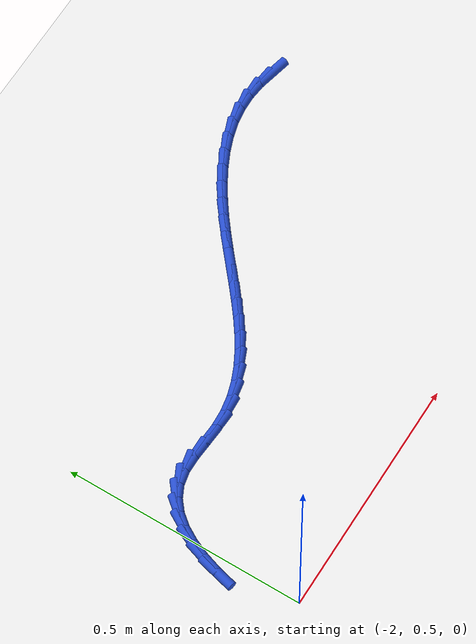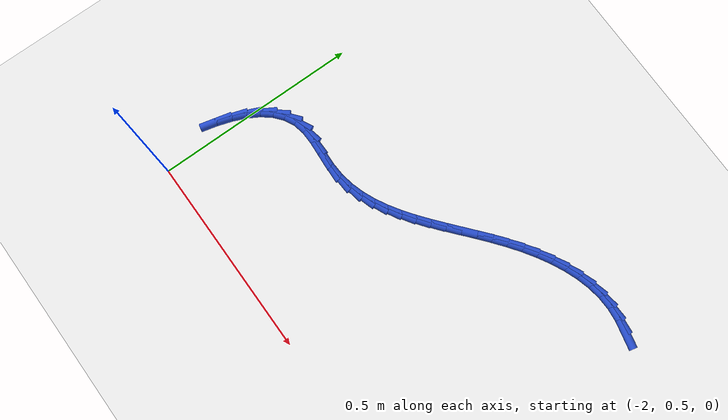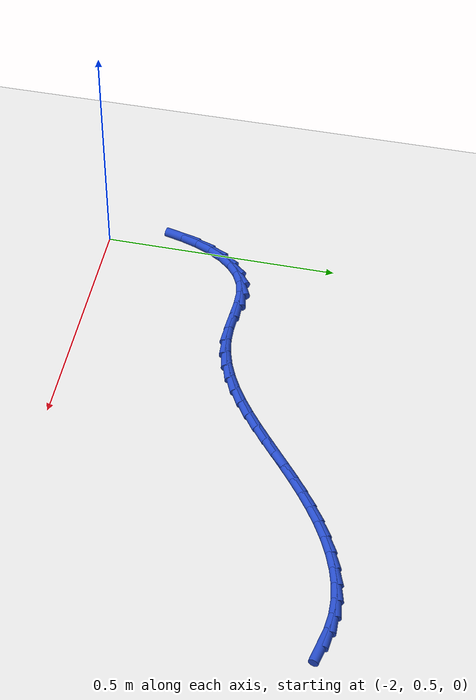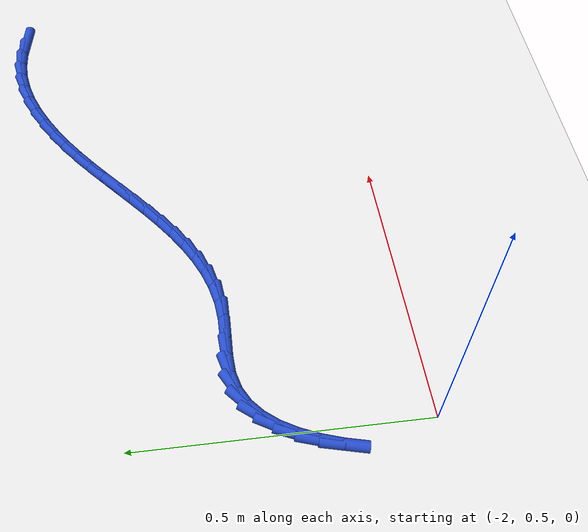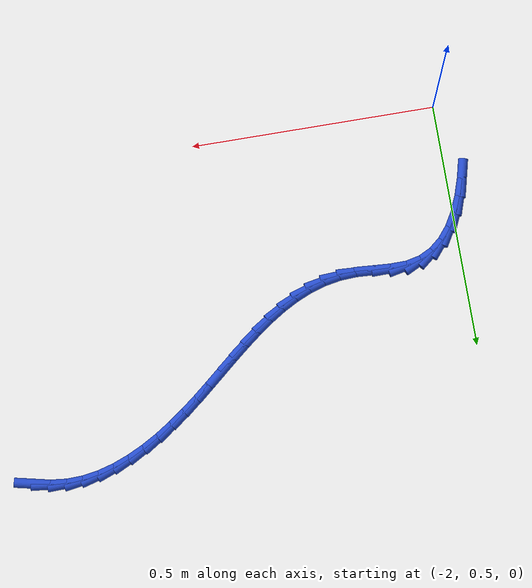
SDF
<sdf version="1.6">
 <world name="default">
  <model name="ground_plane">
   <static>1</static>
   <link name="link">
    <collision name="collision">
     <geometry><plane><normal>0 0 1</normal><size>100 100</size></plane></geometry>
     <surface><friction><ode><mu>100</mu><mu2>50</mu2></ode></friction></surface>
    </collision>
    <visual name="visual">
     <cast_shadows>0</cast_shadows>
     <geometry><plane><normal>0 0 1</normal><size>100 100</size></plane></geometry>
     <material>
      <script><uri>file://media/materials/scripts/gazebo.material</uri><name>Gazebo/WhiteGlow</name></script>
     </material>
    </visual>
   </link>
  </model>
  <model name="line">
   <link name="link_48">
    <pose>-1.0744508417976113 1.1304381525775553 0.01 0 1.57 -0.22320368448068828</pose>
    <collision name="collision">
     <geometry><cylinder><radius>0.01</radius><length>0.08</length></cylinder></geometry>
    </collision>
    <visual name="visual">
     <material>
      <script><name>Gazebo/Blue</name><uri>file://media/materials/scripts/gazebo.material</uri></script>
     </material>
     <geometry><cylinder><radius>0.01</radius><length>0.08</length></cylinder></geometry>
    </visual>
   </link>
   <link name="link_49">
    <pose>-1.1069730959214021 1.1378202402189652 0.01 0 1.57 -0.1045193089795949</pose>
    <collision name="collision">
     <geometry><cylinder><radius>0.01</radius><length>0.08</length></cylinder></geometry>
    </collision>
    <visual name="visual">
     <material>
      <script><name>Gazebo/Blue</name><uri>file://media/materials/scripts/gazebo.material</uri></script>
     </material>
     <geometry><cylinder><radius>0.01</radius><length>0.08</length></cylinder></geometry>
    </visual>
   </link>
   <link name="link_50">
    <pose>-1.1397639729906248 1.1412600550030723 0.01 0 1.57 0.026673547883761722</pose>
    <collision name="collision">
     <geometry><cylinder><radius>0.01</radius><length>0.08</length></cylinder></geometry>
    </collision>
    <visual name="visual">
     <material>
      <script><name>Gazebo/Blue</name><uri>file://media/materials/scripts/gazebo.material</uri></script>
     </material>
     <geometry><cylinder><radius>0.01</radius><length>0.08</length></cylinder></geometry>
    </visual>
   </link>
   <link name="link_51">
    <pose>-1.1727604223580879 1.1403797138398022 0.01 0 1.57 0.1551874849162327</pose>
    <collision name="collision">
     <geometry><cylinder><radius>0.01</radius><length>0.08</length></cylinder></geometry>
    </collision>
    <visual name="visual">
     <material>
      <script><name>Gazebo/Blue</name><uri>file://media/materials/scripts/gazebo.material</uri></script>
     </material>
     <geometry><cylinder><radius>0.01</radius><length>0.08</length></cylinder></geometry>
    </visual>
   </link>
   <link name="link_52">
    <pose>-1.20584529373193 1.1352037377175122 0.01 0 1.57 0.267403179976876</pose>
    <collision name="collision">
     <geometry><cylinder><radius>0.01</radius><length>0.08</length></cylinder></geometry>
    </collision>
    <visual name="visual">
     <material>
      <script><name>Gazebo/Blue</name><uri>file://media/materials/scripts/gazebo.material</uri></script>
     </material>
     <geometry><cylinder><radius>0.01</radius><length>0.08</length></cylinder></geometry>
    </visual>
   </link>
   <link name="link_53">
    <pose>-1.2388468764806124 1.1261624784454707 0.01 0 1.57 0.3635602836979531</pose>
    <collision name="collision">
     <geometry><cylinder><radius>0.01</radius><length>0.08</length></cylinder></geometry>
    </collision>
    <visual name="visual">
     <material>
      <script><name>Gazebo/Blue</name><uri>file://media/materials/scripts/gazebo.material</uri></script>
     </material>
     <geometry><cylinder><radius>0.01</radius><length>0.08</length></cylinder></geometry>
    </visual>
   </link>
   <link name="link_54">
    <pose>-1.2715910514159616 1.1137042031634286 0.01 0 1.57 0.4454290458438311</pose>
    <collision name="collision">
     <geometry><cylinder><radius>0.01</radius><length>0.08</length></cylinder></geometry>
    </collision>
    <visual name="visual">
     <material>
      <script><name>Gazebo/Blue</name><uri>file://media/materials/scripts/gazebo.material</uri></script>
     </material>
     <geometry><cylinder><radius>0.01</radius><length>0.08</length></cylinder></geometry>
    </visual>
   </link>
   <link name="link_55">
    <pose>-1.3039036993498028 1.0982771790111363 0.01 0 1.57 0.5150763140110858</pose>
    <collision name="collision">
     <geometry><cylinder><radius>0.01</radius><length>0.08</length></cylinder></geometry>
    </collision>
    <visual name="visual">
     <material>
      <script><name>Gazebo/Blue</name><uri>file://media/materials/scripts/gazebo.material</uri></script>
     </material>
     <geometry><cylinder><radius>0.01</radius><length>0.08</length></cylinder></geometry>
    </visual>
   </link>
   <link name="link_56">
    <pose>-1.3356107010939628 1.0803296731283443 0.01 0 1.57 0.5744866688696507</pose>
    <collision name="collision">
     <geometry><cylinder><radius>0.01</radius><length>0.08</length></cylinder></geometry>
    </collision>
    <visual name="visual">
     <material>
      <script><name>Gazebo/Blue</name><uri>file://media/materials/scripts/gazebo.material</uri></script>
     </material>
     <geometry><cylinder><radius>0.01</radius><length>0.08</length></cylinder></geometry>
    </visual>
   </link>
   <link name="link_57">
    <pose>-1.3665379374602666 1.0603099526548025 0.01 0 1.57 0.6245268697723203</pose>
    <collision name="collision">
     <geometry><cylinder><radius>0.01</radius><length>0.08</length></cylinder></geometry>
    </collision>
    <visual name="visual">
     <material>
      <script><name>Gazebo/Blue</name><uri>file://media/materials/scripts/gazebo.material</uri></script>
     </material>
     <geometry><cylinder><radius>0.01</radius><length>0.08</length></cylinder></geometry>
    </visual>
   </link>
   <link name="link_58">
    <pose>-1.3965663846158385 1.0386664907402936 0.01 0 1.57 0.6624686107490294</pose>
    <collision name="collision">
     <geometry><cylinder><radius>0.01</radius><length>0.08</length></cylinder></geometry>
    </collision>
    <visual name="visual">
     <material>
      <script><name>Gazebo/Blue</name><uri>file://media/materials/scripts/gazebo.material</uri></script>
     </material>
     <geometry><cylinder><radius>0.01</radius><length>0.08</length></cylinder></geometry>
    </visual>
   </link>
   <link name="link_59">
    <pose>-1.4258174617749397 1.0158486595882337 0.01 0 1.57 0.6876684319064283</pose>
    <collision name="collision">
     <geometry><cylinder><radius>0.01</radius><length>0.08</length></cylinder></geometry>
    </collision>
    <visual name="visual">
     <material>
      <script><name>Gazebo/Blue</name><uri>file://media/materials/scripts/gazebo.material</uri></script>
     </material>
     <geometry><cylinder><radius>0.01</radius><length>0.08</length></cylinder></geometry>
    </visual>
   </link>
   <link name="link_60">
    <pose>-1.4544781626176728 0.9923060765950814 0.01 0 1.57 0.700349872848453</pose>
    <collision name="collision">
     <geometry><cylinder><radius>0.01</radius><length>0.08</length></cylinder></geometry>
    </collision>
    <visual name="visual">
     <material>
      <script><name>Gazebo/Blue</name><uri>file://media/materials/scripts/gazebo.material</uri></script>
     </material>
     <geometry><cylinder><radius>0.01</radius><length>0.08</length></cylinder></geometry>
    </visual>
   </link>
   <link name="link_61">
    <pose>-1.4827354822961087 0.9684883591628003 0.01 0 1.57 0.7005146841830622</pose>
    <collision name="collision">
     <geometry><cylinder><radius>0.01</radius><length>0.08</length></cylinder></geometry>
    </collision>
    <visual name="visual">
     <material>
      <script><name>Gazebo/Blue</name><uri>file://media/materials/scripts/gazebo.material</uri></script>
     </material>
     <geometry><cylinder><radius>0.01</radius><length>0.08</length></cylinder></geometry>
    </visual>
   </link>
   <link name="link_62">
    <pose>-1.5107764159623172 0.9448451246933528 0.01 0 1.57 0.6878769783258032</pose>
    <collision name="collision">
     <geometry><cylinder><radius>0.01</radius><length>0.08</length></cylinder></geometry>
    </collision>
    <visual name="visual">
     <material>
      <script><name>Gazebo/Blue</name><uri>file://media/materials/scripts/gazebo.material</uri></script>
     </material>
     <geometry><cylinder><radius>0.01</radius><length>0.08</length></cylinder></geometry>
    </visual>
   </link>
   <link name="link_63">
    <pose>-1.5387879587683688 0.9218259905887011 0.01 0 1.57 0.6618407252106738</pose>
    <collision name="collision">
     <geometry><cylinder><radius>0.01</radius><length>0.08</length></cylinder></geometry>
    </collision>
    <visual name="visual">
     <material>
      <script><name>Gazebo/Blue</name><uri>file://media/materials/scripts/gazebo.material</uri></script>
     </material>
     <geometry><cylinder><radius>0.01</radius><length>0.08</length></cylinder></geometry>
    </visual>
   </link>
   <link name="link_64">
    <pose>-1.5669571058663347 0.8998805742508086 0.01 0 1.57 0.6215283284862906</pose>
    <collision name="collision">
     <geometry><cylinder><radius>0.01</radius><length>0.08</length></cylinder></geometry>
    </collision>
    <visual name="visual">
     <material>
      <script><name>Gazebo/Blue</name><uri>file://media/materials/scripts/gazebo.material</uri></script>
     </material>
     <geometry><cylinder><radius>0.01</radius><length>0.08</length></cylinder></geometry>
    </visual>
   </link>
   <link name="link_65">
    <pose>-1.595470852408284 0.8794584930816369 0.01 0 1.57 0.5658889646146867</pose>
    <collision name="collision">
     <geometry><cylinder><radius>0.01</radius><length>0.08</length></cylinder></geometry>
    </collision>
    <visual name="visual">
     <material>
      <script><name>Gazebo/Blue</name><uri>file://media/materials/scripts/gazebo.material</uri></script>
     </material>
     <geometry><cylinder><radius>0.01</radius><length>0.08</length></cylinder></geometry>
    </visual>
   </link>
   <link name="link_66">
    <pose>-1.6245161935462884 0.86100936448315 0.01 0 1.57 0.4939368528102909</pose>
    <collision name="collision">
     <geometry><cylinder><radius>0.01</radius><length>0.08</length></cylinder></geometry>
    </collision>
    <visual name="visual">
     <material>
      <script><name>Gazebo/Blue</name><uri>file://media/materials/scripts/gazebo.material</uri></script>
     </material>
     <geometry><cylinder><radius>0.01</radius><length>0.08</length></cylinder></geometry>
    </visual>
   </link>
   <link name="link_67">
    <pose>-1.6542801244324172 0.8449828058573094 0.01 0 1.57 0.40517528609182224</pose>
    <collision name="collision">
     <geometry><cylinder><radius>0.01</radius><length>0.08</length></cylinder></geometry>
    </collision>
    <visual name="visual">
     <material>
      <script><name>Gazebo/Blue</name><uri>file://media/materials/scripts/gazebo.material</uri></script>
     </material>
     <geometry><cylinder><radius>0.01</radius><length>0.08</length></cylinder></geometry>
    </visual>
   </link>
   <link name="link_68">
    <pose>-1.6849496402187423 0.8318284346060787 0.01 0 1.57 0.3002125887627156</pose>
    <collision name="collision">
     <geometry><cylinder><radius>0.01</radius><length>0.08</length></cylinder></geometry>
    </collision>
    <visual name="visual">
     <material>
      <script><name>Gazebo/Blue</name><uri>file://media/materials/scripts/gazebo.material</uri></script>
     </material>
     <geometry><cylinder><radius>0.01</radius><length>0.08</length></cylinder></geometry>
    </visual>
   </link>
   <link name="link_69">
    <pose>-1.7167117360573327 0.8219958681314198 0.01 0 1.57 0.1814223896076841</pose>
    <collision name="collision">
     <geometry><cylinder><radius>0.01</radius><length>0.08</length></cylinder></geometry>
    </collision>
    <visual name="visual">
     <material>
      <script><name>Gazebo/Blue</name><uri>file://media/materials/scripts/gazebo.material</uri></script>
     </material>
     <geometry><cylinder><radius>0.01</radius><length>0.08</length></cylinder></geometry>
    </visual>
   </link>
   <link name="link_70">
    <pose>-1.7497534071002598 0.8159347238352956 0.01 0 1.57 0.05335401466200969</pose>
    <collision name="collision">
     <geometry><cylinder><radius>0.01</radius><length>0.08</length></cylinder></geometry>
    </collision>
    <visual name="visual">
     <material>
      <script><name>Gazebo/Blue</name><uri>file://media/materials/scripts/gazebo.material</uri></script>
     </material>
     <geometry><cylinder><radius>0.01</radius><length>0.08</length></cylinder></geometry>
    </visual>
   </link>
   <link name="link_71">
    <pose>-1.7842603697161108 0.8140918898790398 0.01 0 1.57 -0.05081191363110439</pose>
    <collision name="collision">
     <geometry><cylinder><radius>0.01</radius><length>0.08</length></cylinder></geometry>
    </collision>
    <visual name="visual">
     <material>
      <script><name>Gazebo/Blue</name><uri>file://media/materials/scripts/gazebo.material</uri></script>
     </material>
     <geometry><cylinder><radius>0.01</radius><length>0.08</length></cylinder></geometry>
    </visual>
   </link>
   <link name="link_72">
    <pose>-1.8199462610475887 0.8159067204499043 0.01 0 1.57 -0.06780042683202173</pose>
    <collision name="collision">
     <geometry><cylinder><radius>0.01</radius><length>0.08</length></cylinder></geometry>
    </collision>
    <visual name="visual">
     <material>
      <script><name>Gazebo/Blue</name><uri>file://media/materials/scripts/gazebo.material</uri></script>
     </material>
     <geometry><cylinder><radius>0.01</radius><length>0.08</length></cylinder></geometry>
    </visual>
   </link>
   <link name="link_73">
    <pose>-1.855349692134091 0.8183107730463901 0.01 0 1.57 0.013702902606136573</pose>
    <collision name="collision">
     <geometry><cylinder><radius>0.01</radius><length>0.08</length></cylinder></geometry>
    </collision>
    <visual name="visual">
     <material>
      <script><name>Gazebo/Blue</name><uri>file://media/materials/scripts/gazebo.material</uri></script>
     </material>
     <geometry><cylinder><radius>0.01</radius><length>0.08</length></cylinder></geometry>
    </visual>
   </link>
   <link name="link_74">
    <pose>-1.8888295236894623 0.8178519734587617 0.01 0 1.57 0.21075065086673284</pose>
    <collision name="collision">
     <geometry><cylinder><radius>0.01</radius><length>0.08</length></cylinder></geometry>
    </collision>
    <visual name="visual">
     <material>
      <script><name>Gazebo/Blue</name><uri>file://media/materials/scripts/gazebo.material</uri></script>
     </material>
     <geometry><cylinder><radius>0.01</radius><length>0.08</length></cylinder></geometry>
    </visual>
   </link>
   <link name="link_75">
    <pose>-1.918902264822454 0.8114185924583597 0.01 0 1.57 0.4562844213815533</pose>
    <collision name="collision">
     <geometry><cylinder><radius>0.01</radius><length>0.08</length></cylinder></geometry>
    </collision>
    <visual name="visual">
     <material>
      <script><name>Gazebo/Blue</name><uri>file://media/materials/scripts/gazebo.material</uri></script>
     </material>
     <geometry><cylinder><radius>0.01</radius><length>0.08</length></cylinder></geometry>
    </visual>
   </link>
   <link name="link_76">
    <pose>-1.945276832382817 0.7984731737120648 0.01 0 1.57 0.6871968456211701</pose>
    <collision name="collision">
     <geometry><cylinder><radius>0.01</radius><length>0.08</length></cylinder></geometry>
    </collision>
    <visual name="visual">
     <material>
      <script><name>Gazebo/Blue</name><uri>file://media/materials/scripts/gazebo.material</uri></script>
     </material>
     <geometry><cylinder><radius>0.01</radius><length>0.08</length></cylinder></geometry>
    </visual>
   </link>
   <link name="link_77">
    <pose>-1.9682074515444992 0.7796555196300893 0.01 0 1.57 0.8832921943276225</pose>
    <collision name="collision">
     <geometry><cylinder><radius>0.01</radius><length>0.08</length></cylinder></geometry>
    </collision>
    <visual name="visual">
     <material>
      <script><name>Gazebo/Blue</name><uri>file://media/materials/scripts/gazebo.material</uri></script>
     </material>
     <geometry><cylinder><radius>0.01</radius><length>0.08</length></cylinder></geometry>
    </visual>
   </link>
   <link name="link_78">
    <pose>-1.9879511613628493 0.7556115074730209 0.01 0 1.57 1.0396979252986212</pose>
    <collision name="collision">
     <geometry><cylinder><radius>0.01</radius><length>0.08</length></cylinder></geometry>
    </collision>
    <visual name="visual">
     <material>
      <script><name>Gazebo/Blue</name><uri>file://media/materials/scripts/gazebo.material</uri></script>
     </material>
     <geometry><cylinder><radius>0.01</radius><length>0.08</length></cylinder></geometry>
    </visual>
   </link>
   <link name="link_79">
    <pose>-2.004765000893214 0.7269870145014473 0.01 0 1.57 1.1610596257917072</pose>
    <collision name="collision">
     <geometry><cylinder><radius>0.01</radius><length>0.08</length></cylinder></geometry>
    </collision>
    <visual name="visual">
     <material>
      <script><name>Gazebo/Blue</name><uri>file://media/materials/scripts/gazebo.material</uri></script>
     </material>
     <geometry><cylinder><radius>0.01</radius><length>0.08</length></cylinder></geometry>
    </visual>
   </link>
   <link name="link_80">
    <pose>-2.0189060091909403 0.6944279179759562 0.01 0 1.57 1.2546815127725515</pose>
    <collision name="collision">
     <geometry><cylinder><radius>0.01</radius><length>0.08</length></cylinder></geometry>
    </collision>
    <visual name="visual">
     <material>
      <script><name>Gazebo/Blue</name><uri>file://media/materials/scripts/gazebo.material</uri></script>
     </material>
     <geometry><cylinder><radius>0.01</radius><length>0.08</length></cylinder></geometry>
    </visual>
   </link>
   <link name="link_81">
    <pose>-2.0306312253113763 0.6585800951571352 0.01 0 1.57 1.327192462689439</pose>
    <collision name="collision">
     <geometry><cylinder><radius>0.01</radius><length>0.08</length></cylinder></geometry>
    </collision>
    <visual name="visual">
     <material>
      <script><name>Gazebo/Blue</name><uri>file://media/materials/scripts/gazebo.material</uri></script>
     </material>
     <geometry><cylinder><radius>0.01</radius><length>0.08</length></cylinder></geometry>
    </visual>
   </link>
  </model>
 </world>
</sdf>
